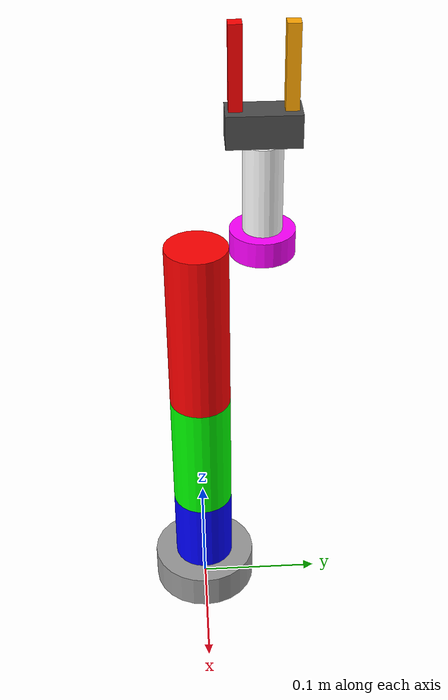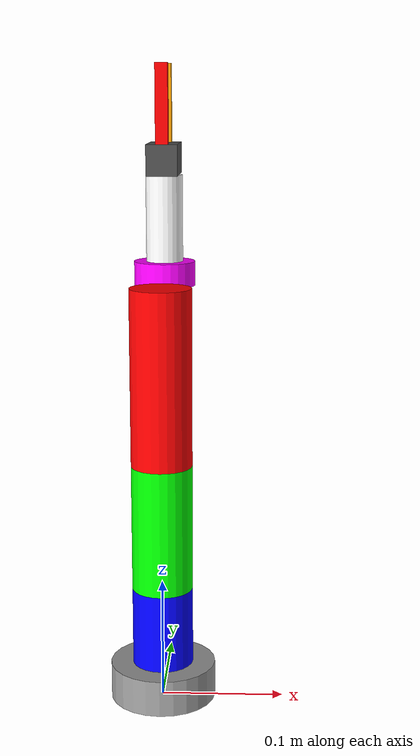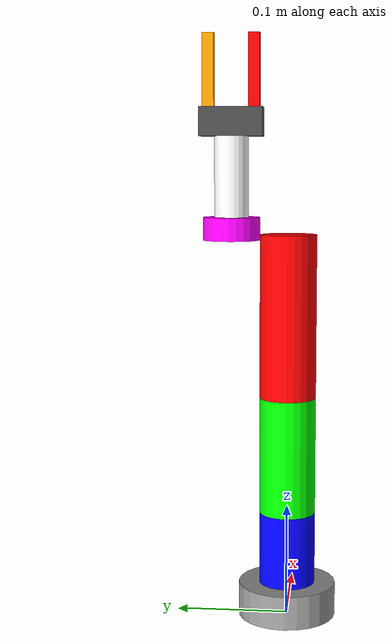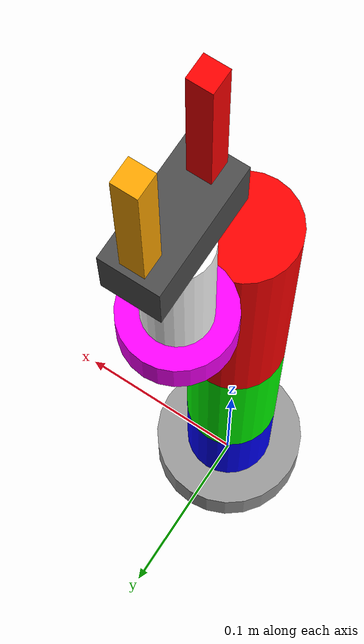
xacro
<?xml version="1.0"?>

<!-- XACRO description of six DOF arm -->
<robot name="six_dof_arm" xmlns:xacro="http://www.ros.org/wiki/xacro">
    <xacro:macro name="cylinder_link" params="name length radius color xyz">
        <link name="${name}">

            <visual>
                <origin xyz="${xyz}" rpy="0 0 0"/>
                <geometry>
                    <cylinder length="${length}" radius="${radius}"/>
                </geometry>
                <material name="${color}">
                    <color rgba="${color}"/>
                </material>
            </visual>

            <collision>
                <origin xyz="${xyz}" rpy="0 0 0"/>
                <geometry>
                    <cylinder length="${length}" radius="${radius}"/>
                </geometry>
            </collision>
        </link>
    </xacro:macro>

    <xacro:macro name="revolute_joint" params="name parent child xyz axis lower upper">
        <joint name="${name}" type="revolute">
            <parent link="${parent}"/>
            <child link="${child}"/>
            <origin xyz="${xyz}" rpy="0 0 0"/>
            <axis xyz="${axis}"/>
            <limit lower="${lower}" upper="${upper}" effort="10" velocity="1"/>
            <dynamics damping="0.1" friction="0.01"/>
        </joint>
    </xacro:macro>

    <link name="world"/>

    <xacro:cylinder_link name="base_link" length="0.03" radius="0.0435" color="0.6 0.6 0.6 1" xyz="0 0 0.015"/>

    <joint name="world_joint" type="fixed">
        <parent link="world"/>
        <child link="base_link"/>
        <origin xyz="0 0 0" rpy="0 0 0"/>
    </joint>

    <xacro:cylinder_link name="link1" length="0.065" radius="0.025" color="0 0 1 1" xyz="0 0 0.0325"/>

    <xacro:revolute_joint name="joint1" parent="base_link" child="link1" xyz="0 0 0.03" axis="0 0 1" lower="-1.57" upper="1.57"/>

    <xacro:cylinder_link name="link2" length="0.105" radius="0.025" color="0 1 0 1" xyz="0 0 0.0525"/>

    <xacro:revolute_joint name="joint2" parent="link1" child="link2" xyz="0 0 0.065" axis="0 1 0" lower="-1.57" upper="1.57"/>

    <xacro:cylinder_link name="link3" length="0.145" radius="0.025" color="1 0 0 1" xyz="0 0 0.0725"/>

    <xacro:revolute_joint name="joint3" parent="link2" child="link3" xyz="0 0 0.105" axis="0 1 0" lower="-1.57" upper="1.57"/>

    <xacro:cylinder_link name="link4" length="0.02" radius="0.025" color="1 0 1 1" xyz="0 0.025 0.005"/>

    <xacro:revolute_joint name="joint4" parent="link3" child="link4" xyz="0 0.025 0.145" axis="0 1 0" lower="-1.57" upper="1.57"/>

    <xacro:cylinder_link name="link5" length="0.07" radius="0.015" color="1 1 1 1" xyz="0 0 0.03"/>

    <xacro:revolute_joint name="joint5" parent="link4" child="link5" xyz="0 0.025 0.02" axis="1 0 0" lower="-1.57" upper="1.57"/>

    <link name="gripper_base">
        <visual>
            <origin xyz="0 0 0.0175" rpy="0 0 0"/>
            <geometry>
                <box size="0.025 0.055 0.025"/>
            </geometry>
            <material name="dark_gray">
                <color rgba="0.3 0.3 0.3 1"/>
            </material>
        </visual>
        <collision>
            <origin xyz="0 0 0.0125" rpy="0 0 0"/>
            <geometry>
                <box size="0.025 0.055 0.025"/>
            </geometry>
        </collision>
    </link>

    <link name="end_effector_link">
    </link>

    <joint name="ee_fixed" type="fixed">
        <parent link="gripper_base"/>
        <child link="end_effector_link"/>
        <origin xyz="0 0 0.0125" rpy="0 0 0"/>
    </joint>

    <xacro:revolute_joint name="joint6" parent="link5" child="gripper_base" xyz="0 0 0.06" axis="0 0 1" lower="-1.57" upper="1.57"/>

    <link name="left_finger">
        <visual>
            <origin xyz="0 0.02 0.05" rpy="0 0 0"/>
            <geometry>
                <box size="0.01 0.01 0.085"/>
            </geometry>
            <material name="red">
                <color rgba="1 0.65 0 1"/>
            </material>
        </visual>
        <collision>
            <origin xyz="0 0.015 0.0425" rpy="0 0 0"/>
            <geometry>
                <box size="0.01 0.01 0.085"/>
            </geometry>
        </collision>
    </link>

    <joint name="left_finger_joint" type="prismatic">
        <parent link="gripper_base"/>
        <child link="left_finger"/>

        <origin xyz="0 0 0" rpy="0 0 0"/>
        <axis xyz="0 1 0"/>

        <limit lower="-0.015" upper="0" effort="10" velocity="1"/>
    </joint>

    <link name="right_finger">
        <visual>
            <origin xyz="0 -0.02 0.05" rpy="0 0 0"/>
            <geometry>
                <box size="0.01 0.01 0.085"/>
            </geometry>
            <material name="red">
                <color rgba="1 0 0 1"/>
            </material>
        </visual>
        <collision>
            <origin xyz="0 -0.015 0.0425" rpy="0 0 0"/>
            <geometry>
                <box size="0.01 0.01 0.085"/>
            </geometry>
        </collision>
    </link>

    <joint name="right_finger_joint" type="prismatic">
        <parent link="gripper_base"/>
        <child link="right_finger"/>

        <origin xyz="0 0 0" rpy="0 0 0"/>
        <axis xyz="0 1 0"/>

        <limit lower="0" upper="0.015" effort="10" velocity="1"/>

        <mimic joint="left_finger_joint" multiplier="-1" offset="0"/>
    </joint>

    <ros2_control name="ArmSystem" type="system">
        <hardware>
            <plugin>mock_components/GenericSystem</plugin>
        </hardware>

        <joint name="joint1">
            <command_interface name="position"/>
            <state_interface name="position"/>
            <state_interface name="velocity"/>
        </joint>

        <joint name="joint2">
            <command_interface name="position"/>
            <state_interface name="position"/>
            <state_interface name="velocity"/>
        </joint>

        <joint name="joint3">
            <command_interface name="position"/>
            <state_interface name="position"/>
            <state_interface name="velocity"/>
        </joint>

        <joint name="joint4">
            <command_interface name="position"/>
            <state_interface name="position"/>
            <state_interface name="velocity"/>
        </joint>

        <joint name="joint5">
            <command_interface name="position"/>
            <state_interface name="position"/>
            <state_interface name="velocity"/>
        </joint>

        <joint name="joint6">
            <command_interface name="position"/>
            <state_interface name="position"/>
            <state_interface name="velocity"/>
        </joint>
    </ros2_control>

</robot>
